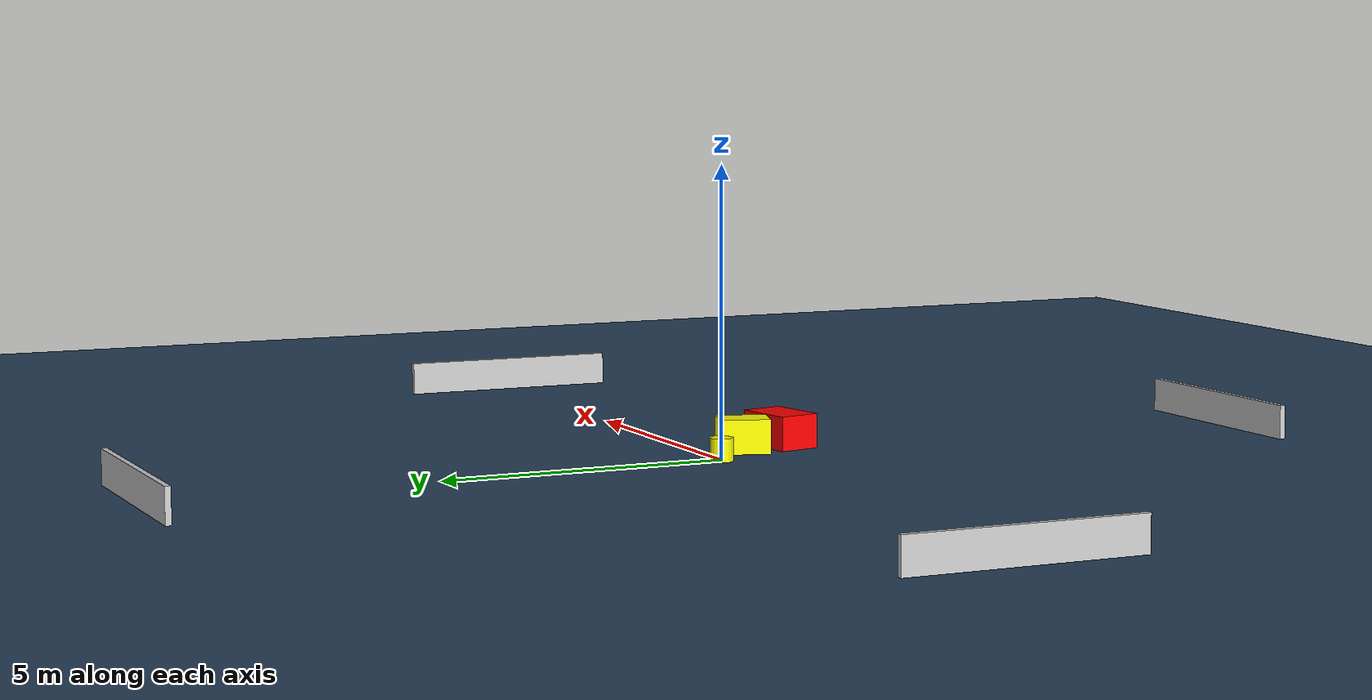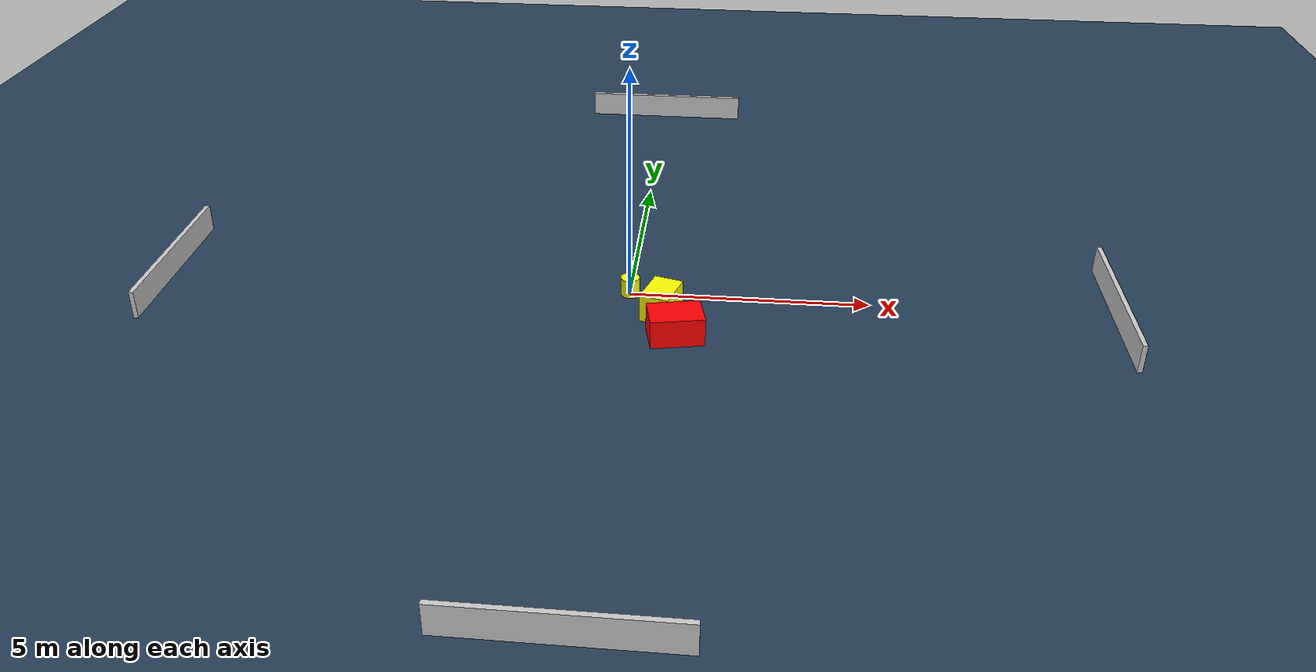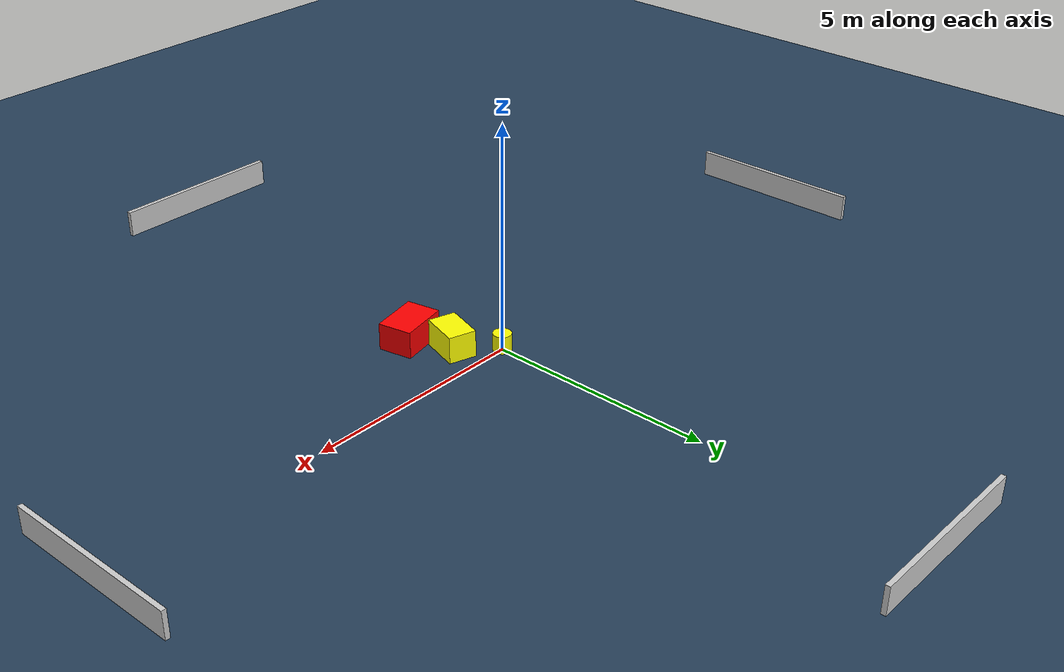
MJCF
<?xml version="1.0" ?>
<mujoco model="generated_environment">
  <option timestep="0.01" integrator="RK4" cone="elliptic"/>
  <default>
    <geom density="1"/>
  </default>
  <asset>
    <texture builtin="gradient" height="3072" name="skybox" rgb1="0.3 0.5 0.7" rgb2="0 0 0" type="skybox" width="512"/>
    <texture builtin="checker" height="300" name="groundplane" rgb1="0.2 0.3 0.4" rgb2="0.1 0.2 0.3" type="2d" width="300"/>
    <material name="groundplane" reflectance="0.2" texrepeat="5 5" texture="groundplane"/>
  </asset>
  <worldbody>
    <light dir="0 0 -1" directional="true" pos="0 0 1.5"/>
    <geom condim="3" friction="0.5 0.005 0.001" material="groundplane" name="floor" pos="0 0 0" size="0 0 0.05" type="plane"/>
    <body name="walls">
      <geom name="wall_1" condim="4" pos="-10.0 0.0 0.3" rgba="0.800000011920929 0.800000011920929 0.800000011920929 1.0" size="0.05 2.0 0.3" type="box"/>
      <geom name="wall_2" condim="4" pos="10.0 0.0 0.3" rgba="0.800000011920929 0.800000011920929 0.800000011920929 1.0" size="0.05 2.0 0.3" type="box"/>
      <geom name="wall_3" condim="4" pos="0.0 -10.0 0.3" rgba="0.800000011920929 0.800000011920929 0.800000011920929 1.0" size="2.0 0.05 0.3" type="box"/>
      <geom name="wall_4" condim="4" pos="0.0 10.0 0.3" rgba="0.800000011920929 0.800000011920929 0.800000011920929 1.0" size="2.0 0.05 0.3" type="box"/>
    </body>
    <body name="robot">
      <joint name="joint_x" type="slide" pos="0 0 0" axis="1 0 0"/>
      <joint name="joint_y" type="slide" pos="0 0 0" axis="0 1 0"/>
      <geom name="robot" type="cylinder" pos="0.0 0.0 0.2" size="0.2 0.2 0.0" mass="5.0" friction="1.0 0.005 0.0001" condim="4" rgba="1.0 1.0 0.0 1.0"/>
    </body>
    <body name="obstacle_1_movable">
      <geom name="obstacle_1_movable" condim="4" pos="0.7145785716289275 -0.7413487496599338 0.3" euler="0 0 253.0307449631989" friction="0.0 0.005 0.001" rgba="1.0 1.0 0.0 1.0" size="0.43952704415520766 0.30678689952497606 0.3" type="box" mass="0.1"/>
      <joint type="free"/>
    </body>
    <body name="obstacle_2_static">
      <geom name="obstacle_2_static" condim="4" pos="1.0632679454810123 -1.631037449495304 0.3" euler="0 0 191.63744124884363" friction="0.0 0.005 0.001" rgba="1.0 0.0 0.0 1.0" size="0.547897304067698 0.3783942790150383 0.3" type="box"/>
    </body>
  </worldbody>
  <actuator>
    <motor name="actuator_x" joint="joint_x" gear="1" ctrlrange="-1 1"/>
    <motor name="actuator_y" joint="joint_y" gear="1" ctrlrange="-1 1"/>
  </actuator>
</mujoco>
